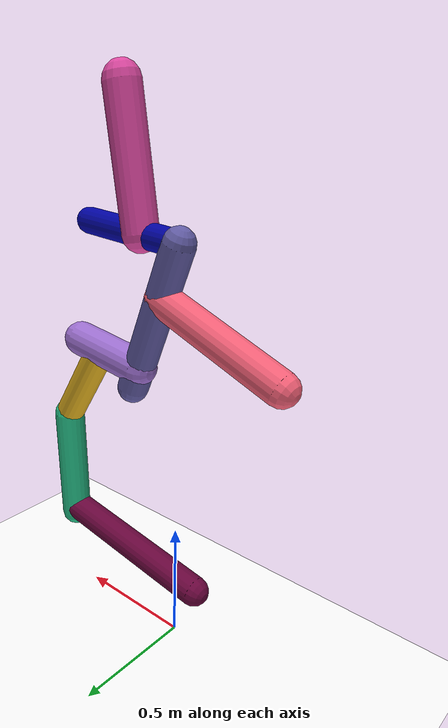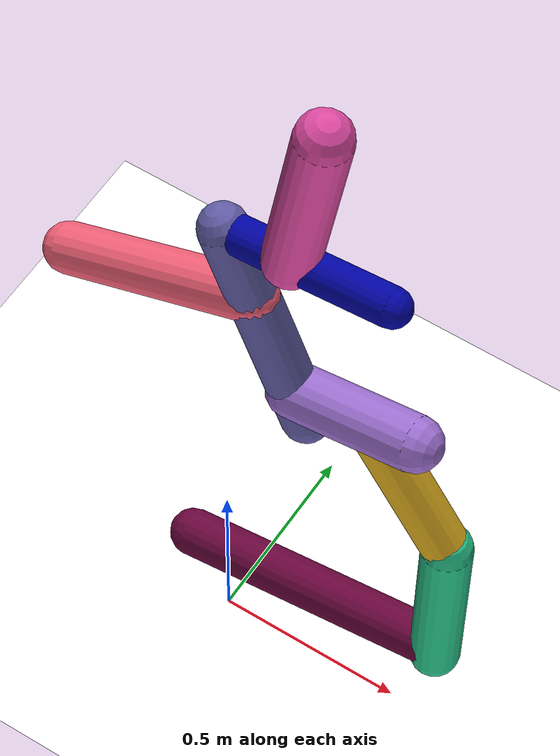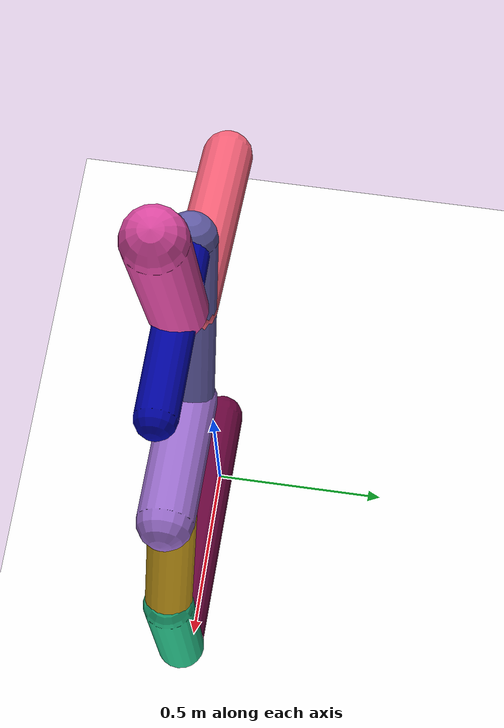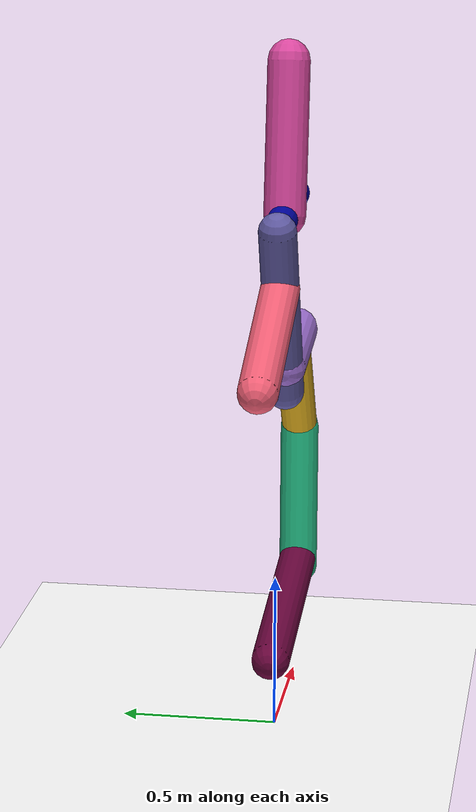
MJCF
<mujoco model="morphology">
    <option timestep="0.01" />
    <custom>
        <!-- brax custom params -->
        <numeric data="0.0 0.0 1.0 0.1 0.1 0.1 0.1 0.1 0.1"
            name="init_qpos" />
        <numeric data="1000" name="constraint_limit_stiffness" />
        <numeric data="4000" name="constraint_stiffness" />
        <numeric data="10" name="constraint_ang_damping" />
        <numeric data="20" name="constraint_vel_damping" />
        <numeric data="0.5" name="joint_scale_pos" />
        <numeric data="0.2" name="joint_scale_ang" />
        <numeric data="0.0" name="ang_damping" />
        <numeric data="1" name="spring_mass_scale" />
        <numeric data="1" name="spring_inertia_scale" />
        <numeric data="15" name="solver_maxls" />
    </custom>
    <default>
        <default class="/" />
        <default class="0/" />
        <default class="0/1/" />
        <default class="0/2/" />
        <default class="0/2/3/" />
        <default class="0/2/4/" />
        <default class="0/2/4/5/" />
        <default class="0/2/4/5/6/" />
        <default class="0/2/4/5/7/" />
        <default class="0/2/4/5/7/8/" />
        <default class="0/2/4/5/7/8/9/" />
        <default class="0/2/4/5/7/8/9/10/" />
    </default>
    <asset>
        <texture name="texplane" type="2d" builtin="checker"
            rgb1="0.10000000000000001 0.20000000000000001 0.29999999999999999"
            rgb2="0.20000000000000001 0.29999999999999999 0.40000000000000002" width="300"
            height="300" />
        <material name="MatPlane" class="/" texture="texplane" texrepeat="20 20" specular="1.0"
            shininess="1.0" reflectance="0.5" />
    </asset>
    <worldbody>
        <light name="//unnamed_light_0" class="/" directional="true" pos="0 0 1.5" dir="0 0 -1.3"
            cutoff="100.0" exponent="1.0" diffuse="1 1 1"
            specular="0.10000000000000001 0.10000000000000001 0.10000000000000001" />
        <geom name="ground" class="/" type="plane" size="15 15 0.5" material="MatPlane"
            rgba="1 1 1 1" />
        <site name="body" class="/"
            size="9.9999999999999995e-07 9.9999999999999995e-07 9.9999999999999995e-07"
            pos="0 0 1.6446825361251831" />
        <body pos="0 0 1.6446825361251831" name="0/">
            <joint name="0/rootx/" class="/" type="slide" axis="1 0 0" stiffness="0.0"
                armature="0.0" damping="0.0" />
            <joint name="0/rootz/" class="/" type="slide" axis="0 0 1" stiffness="0.0"
                armature="0.0" damping="0.0" />
            <joint name="0/rooty/" class="/" type="hinge" axis="0 1 0" stiffness="0.0"
                armature="0.0" damping="0.0" />
            <geom name="0/geom" class="0/" type="capsule" contype="1" conaffinity="1" condim="3"
                size="0.048470334428519793"
                rgba="0.00033081932194189978 0.012455012886624872 0.63742753509390848 1"
                friction="0.59999999999999998 0.10000000000000001 0.10000000000000001"
                fromto="0 0 0 0.43986990955996008 0 0.037582513527956607" />
            <site name="0/end0" class="0/" size="0.0050000000000000001"
                pos="0.43986990955996008 0 0.037582513527956607" />
            <site name="0/attach1" class="0/"
                size="9.9999999999999995e-07 9.9999999999999995e-07 9.9999999999999995e-07"
                pos="0.17738829841916118 0 0.015156067692169723" />
            <body pos="0.17738829841916118 0 0.015156067692169723" name="0/1/">
                <joint name="0/1/joint/" class="0/" type="hinge" axis="0 1 0" limited="true"
                    stiffness="100.0" range="-59.967968634045079 59.967968634045079" armature="0.2"
                    damping="3.5" />
                <geom name="0/1/geom" class="0/1/" type="capsule" contype="1" conaffinity="1"
                    condim="3" size="0.06845958618526804"
                    rgba="0.87108043698540449 0.28535127249538017 0.63559308946676174 1"
                    friction="0.59999999999999998 0.10000000000000001 0.10000000000000001"
                    fromto="0 0 0 0.078363312647046768 0 0.48536182802937633" />
                <site name="0/1/end1" class="0/1/" size="0.0050000000000000001"
                    pos="0.078363312647046768 0 0.48536182802937633" />
            </body>
            <site name="0/attach2" class="0/"
                size="9.9999999999999995e-07 9.9999999999999995e-07 9.9999999999999995e-07"
                pos="0.049972686477538997 0 0.0042696695653705171" />
            <body name="0/2/">
                <geom name="0/2/geom" class="0/2/" type="capsule" contype="1" conaffinity="1"
                    condim="3" size="0.061582705385352127"
                    rgba="0.38364079381896388 0.36142282893249611 0.64819929378094321 1"
                    friction="0.59999999999999998 0.10000000000000001 0.10000000000000001"
                    fromto="0 0 0 0.22686783030327318 0 -0.57716451326855656" />
                <site name="0/2/end2" class="0/2/" size="0.0050000000000000001"
                    pos="0.22686783030327318 0 -0.57716451326855656" />
                <site name="0/2/attach3" class="0/2/"
                    size="9.9999999999999995e-07 9.9999999999999995e-07 9.9999999999999995e-07"
                    pos="0.078730536243448446 0 -0.20029490990229112" />
                <body pos="0.078730536243448446 0 -0.20029490990229112" name="0/2/3/">
                    <joint name="0/2/3/joint/" class="0/2/" type="hinge" axis="0 1 0" limited="true"
                        stiffness="100.0" range="-54.477055309290478 54.477055309290478"
                        armature="0.2" damping="3.5" />
                    <geom name="0/2/3/geom" class="0/2/3/" type="capsule" contype="1"
                        conaffinity="1" condim="3" size="0.063611005932166856"
                        rgba="0.95500026637347413 0.37561256668505105 0.46587947609537039 1"
                        friction="0.59999999999999998 0.10000000000000001 0.10000000000000001"
                        fromto="0 0 0 -0.51610147707469145 0 -0.20343566848311156" />
                    <site name="0/2/3/end3" class="0/2/3/" size="0.0050000000000000001"
                        pos="-0.51610147707469145 0 -0.20343566848311156" />
                </body>
                <site name="0/2/attach4" class="0/2/"
                    size="9.9999999999999995e-07 9.9999999999999995e-07 9.9999999999999995e-07"
                    pos="0.19179373702408911 0 -0.48793404833769782" />
                <body pos="0.19179373702408911 0 -0.48793404833769782" name="0/2/4/">
                    <joint name="0/2/4/joint/" class="0/2/" type="hinge" axis="0 1 0" limited="true"
                        stiffness="100.0" range="-50.312953226334692 50.312953226334692"
                        armature="0.2" damping="3.5" />
                    <geom name="0/2/4/geom" class="0/2/4/" type="capsule" contype="1"
                        conaffinity="1" condim="3" size="0.06956648561455929"
                        rgba="0.61832256008433895 0.4383670866395698 0.82176826214769838 1"
                        friction="0.59999999999999998 0.10000000000000001 0.10000000000000001"
                        fromto="0 0 0 0.32782934880180647 0 0.047219382589938186" />
                    <site name="0/2/4/end4" class="0/2/4/" size="0.0050000000000000001"
                        pos="0.32782934880180647 0 0.047219382589938186" />
                    <site name="0/2/4/attach5" class="0/2/4/"
                        size="9.9999999999999995e-07 9.9999999999999995e-07 9.9999999999999995e-07"
                        pos="0.20864071770079753 0 0.030051872747089932" />
                    <body pos="0.20864071770079753 0 0.030051872747089932" name="0/2/4/5/">
                        <joint name="0/2/4/5/joint/" class="0/2/4/" type="hinge" axis="0 1 0"
                            limited="true" stiffness="100.0"
                            range="-54.620947907197291 54.620947907197291" armature="0.2"
                            damping="3.5" />
                        <geom name="0/2/4/5/geom" class="0/2/4/5/" type="capsule" contype="1"
                            conaffinity="1" condim="3" size="0.05975953546328968"
                            rgba="0.88963175028080188 0.69328094092321402 0.11831577696138063 1"
                            friction="0.59999999999999998 0.10000000000000001 0.10000000000000001"
                            fromto="0 0 0 0.22541791086605245 0 -0.35123265249488272" />
                        <site name="0/2/4/5/end5" class="0/2/4/5/" size="0.0050000000000000001"
                            pos="0.22541791086605245 0 -0.35123265249488272" />
                        <site name="0/2/4/5/attach6" class="0/2/4/5/"
                            size="9.9999999999999995e-07 9.9999999999999995e-07 9.9999999999999995e-07"
                            pos="0.089124096798619004 0 -0.13886781578057761" />
                        <site name="0/2/4/5/attach7" class="0/2/4/5/"
                            size="9.9999999999999995e-07 9.9999999999999995e-07 9.9999999999999995e-07"
                            pos="0.22441438273133799 0 -0.34966901521666111" />
                        <body pos="0.22441438273133799 0 -0.34966901521666111" name="0/2/4/5/7/">
                            <joint name="0/2/4/5/7/joint/" class="0/2/4/5/" type="hinge"
                                axis="0 1 0" limited="true" stiffness="100.0"
                                range="-44.105755982147251 44.105755982147251" armature="0.2"
                                damping="3.5" />
                            <geom name="0/2/4/5/7/geom" class="0/2/4/5/7/" type="capsule"
                                contype="1" conaffinity="1" condim="3" size="0.064304713105706443"
                                rgba="0.15207374561845899 0.7712993837302069 0.54680997219123217 1"
                                friction="0.59999999999999998 0.10000000000000001 0.10000000000000001"
                                fromto="0 0 0 -0.0096037781729683136 0 -0.50098565253040839" />
                            <site name="0/2/4/5/7/end7" class="0/2/4/5/7/"
                                size="0.0050000000000000001"
                                pos="-0.0096037781729683136 0 -0.50098565253040839" />
                            <site name="0/2/4/5/7/attach8" class="0/2/4/5/7/"
                                size="9.9999999999999995e-07 9.9999999999999995e-07 9.9999999999999995e-07"
                                pos="-0.008976895277678509 0 -0.46828400837530965" />
                            <body pos="-0.008976895277678509 0 -0.46828400837530965"
                                name="0/2/4/5/7/8/">
                                <joint name="0/2/4/5/7/8/joint/" class="0/2/4/5/7/" type="hinge"
                                    axis="0 1 0" limited="true" stiffness="100.0"
                                    range="-54.620289978094419 54.620289978094419" armature="0.2"
                                    damping="3.5" />
                                <geom name="0/2/4/5/7/8/geom" class="0/2/4/5/7/8/" type="capsule"
                                    contype="1" conaffinity="1" condim="3"
                                    size="0.061583098361933424"
                                    rgba="0.41205131522094041 0.020053196940403972 0.23571777029808849 1"
                                    friction="0.59999999999999998 0.10000000000000001 0.10000000000000001"
                                    fromto="0 0 0 -0.71959874333505525 0 -0.11311697515913055" />
                                <site name="0/2/4/5/7/8/end8" class="0/2/4/5/7/8/"
                                    size="0.0050000000000000001"
                                    pos="-0.71959874333505525 0 -0.11311697515913055" />
                                <site name="0/2/4/5/7/8/attach9" class="0/2/4/5/7/8/"
                                    size="9.9999999999999995e-07 9.9999999999999995e-07 9.9999999999999995e-07"
                                    pos="-0.29355349280713355 0 -0.046144998808425396" />
                            </body>
                        </body>
                    </body>
                </body>
            </body>
        </body>
    </worldbody>
    <actuator>
        <motor name="0/1/motor" class="0/1/" ctrllimited="true" ctrlrange="-1 1" gear="54"
            joint="0/1/joint/" />
        <motor name="0/2/3/motor" class="0/2/3/" ctrllimited="true" ctrlrange="-1 1" gear="64"
            joint="0/2/3/joint/" />
        <motor name="0/2/4/motor" class="0/2/4/" ctrllimited="true" ctrlrange="-1 1" gear="65"
            joint="0/2/4/joint/" />
        <motor name="0/2/4/5/motor" class="0/2/4/5/" ctrllimited="true" ctrlrange="-1 1" gear="50"
            joint="0/2/4/5/joint/" />
        <motor name="0/2/4/5/7/motor" class="0/2/4/5/7/" ctrllimited="true" ctrlrange="-1 1"
            gear="87" joint="0/2/4/5/7/joint/" />
        <motor name="0/2/4/5/7/8/motor" class="0/2/4/5/7/8/" ctrllimited="true" ctrlrange="-1 1"
            gear="56" joint="0/2/4/5/7/8/joint/" />
    </actuator>
    <sensor>
        <subtreelinvel name="velocity" body="0/" />
    </sensor>
</mujoco>
